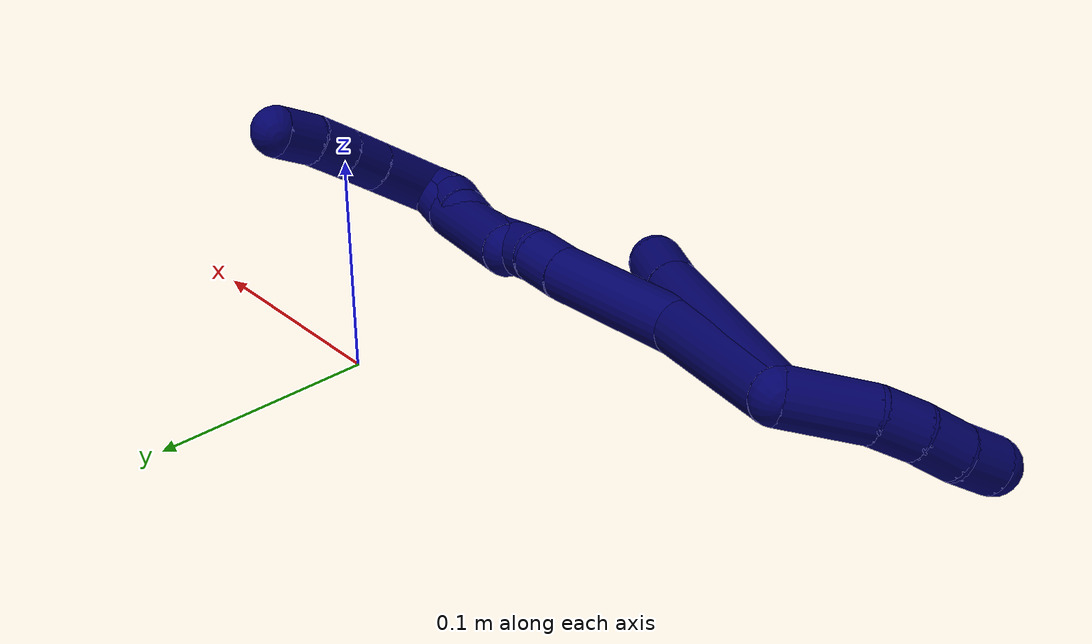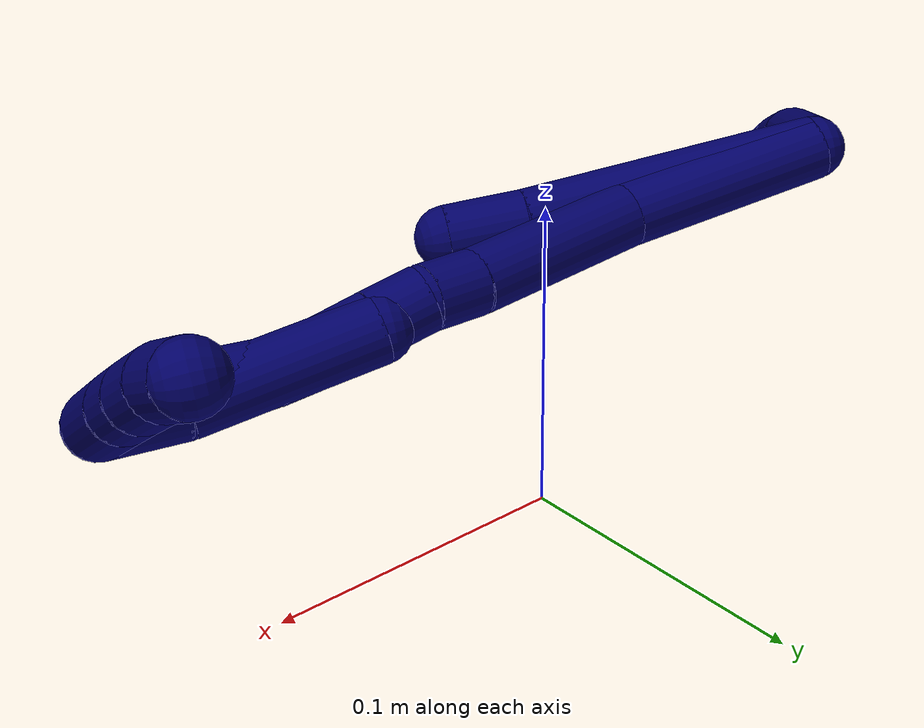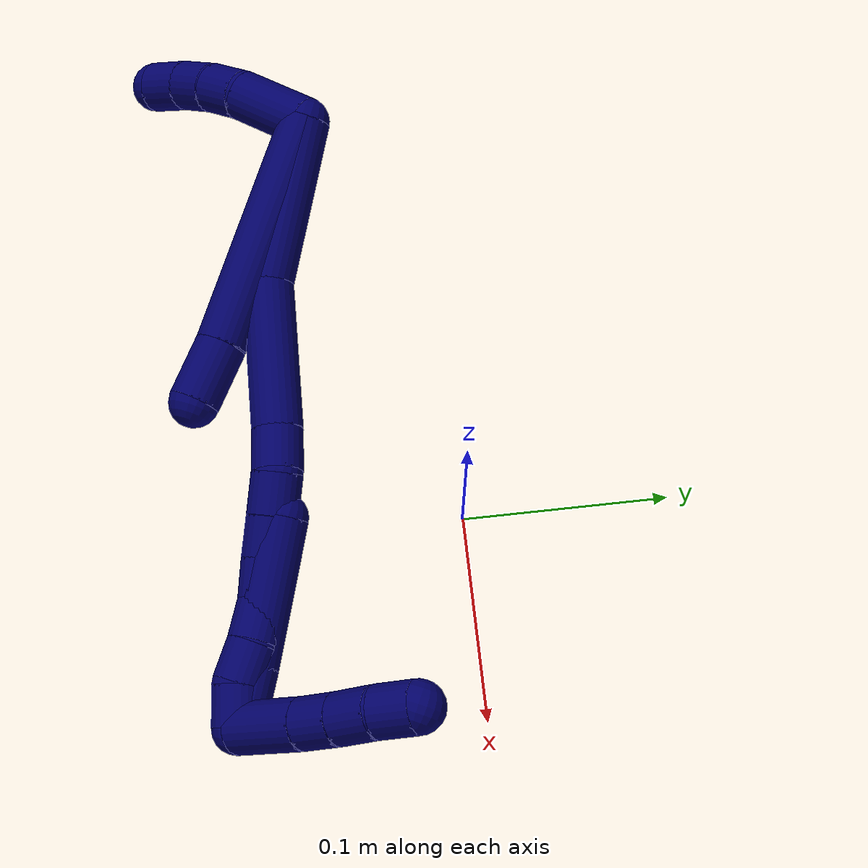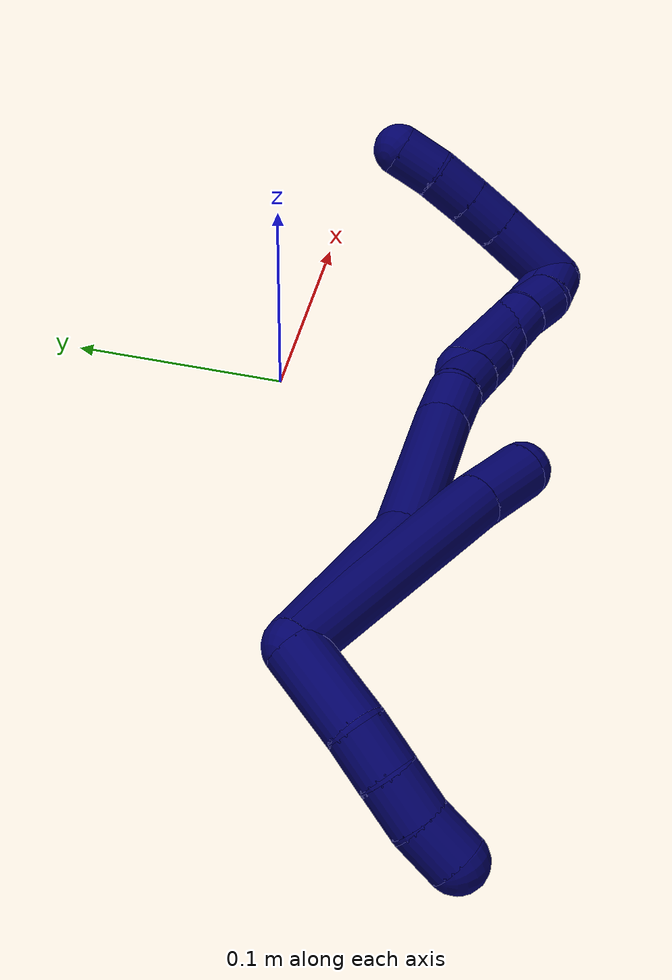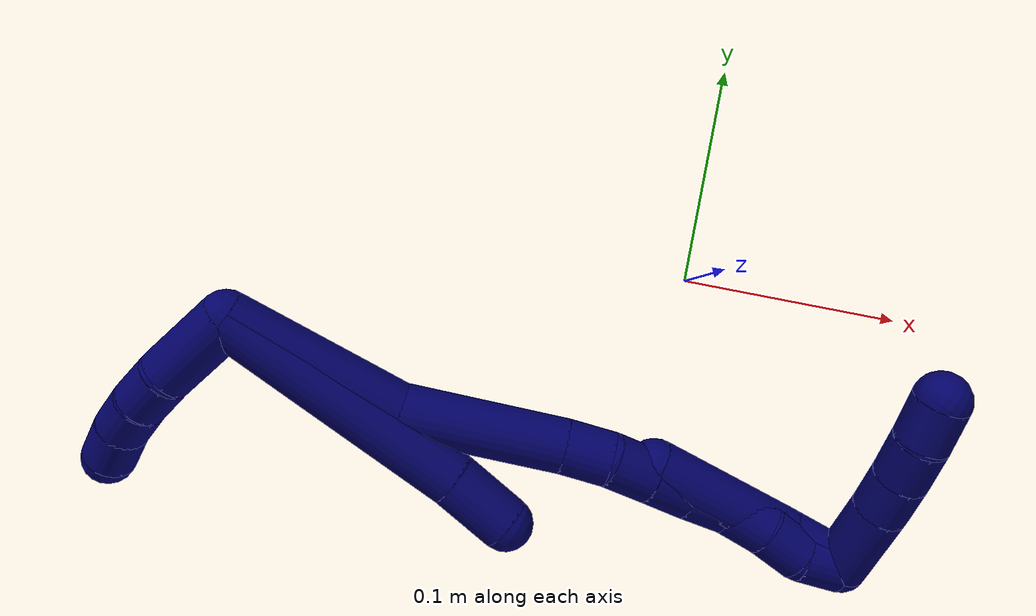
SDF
<sdf version="1.7">
 <world name="default">
  <model name="7">
   <static>0</static>
   <link name="7">
    <collision name="collision-cylinder-e_1_2_8">
     <pose>-0.002067 -0.002022 0.059528 0.033962 -0.034697 -0.000589</pose>
     <geometry><cylinder><radius>0.0125</radius><length>0.119197</length></cylinder></geometry>
     <surface>
      <friction><ode><mu>1.16</mu><mu2>1.16</mu2><slip1>0</slip1><slip2>0</slip2></ode></friction>
      <contact><ode><kp>1e+06</kp><kd>1</kd><max_vel>0</max_vel><min_depth>0.001</min_depth></ode></contact>
     </surface>
    </collision>
    <visual name="visual-cylinder-e_1_2_8">
     <pose>-0.002067 -0.002022 0.059528 0.033962 -0.034697 -0.000589</pose>
     <geometry><cylinder><radius>0.0125</radius><length>0.119197</length></cylinder></geometry>
     <material><ambient>0.003922 0 0.403922 1</ambient></material>
    </visual>
    <collision name="collision-cylinder-e_2_8_6">
     <pose>-0.005748 -0.003967 0.134373 -0.005086 -0.104926 0.000267</pose>
     <geometry><cylinder><radius>0.0125</radius><length>0.030803</length></cylinder></geometry>
     <surface>
      <friction><ode><mu>1.16</mu><mu2>1.16</mu2><slip1>0</slip1><slip2>0</slip2></ode></friction>
      <contact><ode><kp>1e+06</kp><kd>1</kd><max_vel>0</max_vel><min_depth>0.001</min_depth></ode></contact>
     </surface>
    </collision>
    <visual name="visual-cylinder-e_2_8_6">
     <pose>-0.005748 -0.003967 0.134373 -0.005086 -0.104926 0.000267</pose>
     <geometry><cylinder><radius>0.0125</radius><length>0.030803</length></cylinder></geometry>
     <material><ambient>0.003922 0 0.403922 1</ambient></material>
    </visual>
    <collision name="collision-cylinder-e_1_2_9">
     <pose>-0.019256 -1.6e-05 -0.004312 3.13779 -1.35049 -3.13684</pose>
     <geometry><cylinder><radius>0.0125</radius><length>0.039466</length></cylinder></geometry>
     <surface>
      <friction><ode><mu>1.16</mu><mu2>1.16</mu2><slip1>0</slip1><slip2>0</slip2></ode></friction>
      <contact><ode><kp>1e+06</kp><kd>1</kd><max_vel>0</max_vel><min_depth>0.001</min_depth></ode></contact>
     </surface>
    </collision>
    <visual name="visual-cylinder-e_1_2_9">
     <pose>-0.019256 -1.6e-05 -0.004312 3.13779 -1.35049 -3.13684</pose>
     <geometry><cylinder><radius>0.0125</radius><length>0.039466</length></cylinder></geometry>
     <material><ambient>0.003922 0 0.403922 1</ambient></material>
    </visual>
    <collision name="collision-cylinder-e_2_9_10">
     <pose>-0.048379 -0.002055 -0.010134 2.212 -1.32039 -1.99471</pose>
     <geometry><cylinder><radius>0.0125</radius><length>0.020369</length></cylinder></geometry>
     <surface>
      <friction><ode><mu>1.16</mu><mu2>1.16</mu2><slip1>0</slip1><slip2>0</slip2></ode></friction>
      <contact><ode><kp>1e+06</kp><kd>1</kd><max_vel>0</max_vel><min_depth>0.001</min_depth></ode></contact>
     </surface>
    </collision>
    <visual name="visual-cylinder-e_2_9_10">
     <pose>-0.048379 -0.002055 -0.010134 2.212 -1.32039 -1.99471</pose>
     <geometry><cylinder><radius>0.0125</radius><length>0.020369</length></cylinder></geometry>
     <material><ambient>0.003922 0 0.403922 1</ambient></material>
    </visual>
    <collision name="collision-cylinder-e_3_10_11">
     <pose>-0.067792 -0.00717 -0.012351 1.79573 -1.25004 -1.47141</pose>
     <geometry><cylinder><radius>0.0125</radius><length>0.02012</length></cylinder></geometry>
     <surface>
      <friction><ode><mu>1.16</mu><mu2>1.16</mu2><slip1>0</slip1><slip2>0</slip2></ode></friction>
      <contact><ode><kp>1e+06</kp><kd>1</kd><max_vel>0</max_vel><min_depth>0.001</min_depth></ode></contact>
     </surface>
    </collision>
    <visual name="visual-cylinder-e_3_10_11">
     <pose>-0.067792 -0.00717 -0.012351 1.79573 -1.25004 -1.47141</pose>
     <geometry><cylinder><radius>0.0125</radius><length>0.02012</length></cylinder></geometry>
     <material><ambient>0.003922 0 0.403922 1</ambient></material>
    </visual>
    <collision name="collision-cylinder-e_4_11_5">
     <pose>-0.087018 -0.012738 -0.012263 1.26024 -1.30825 -1.01972</pose>
     <geometry><cylinder><radius>0.0125</radius><length>0.020045</length></cylinder></geometry>
     <surface>
      <friction><ode><mu>1.16</mu><mu2>1.16</mu2><slip1>0</slip1><slip2>0</slip2></ode></friction>
      <contact><ode><kp>1e+06</kp><kd>1</kd><max_vel>0</max_vel><min_depth>0.001</min_depth></ode></contact>
     </surface>
    </collision>
    <visual name="visual-cylinder-e_4_11_5">
     <pose>-0.087018 -0.012738 -0.012263 1.26024 -1.30825 -1.01972</pose>
     <geometry><cylinder><radius>0.0125</radius><length>0.020045</length></cylinder></geometry>
     <material><ambient>0.003922 0 0.403922 1</ambient></material>
    </visual>
    <collision name="collision-cylinder-e_1_2_12">
     <pose>0.003159 -0.004285 0.041265 0.103461 0.075994 0.003937</pose>
     <geometry><cylinder><radius>0.0125</radius><length>0.083215</length></cylinder></geometry>
     <surface>
      <friction><ode><mu>1.16</mu><mu2>1.16</mu2><slip1>0</slip1><slip2>0</slip2></ode></friction>
      <contact><ode><kp>1e+06</kp><kd>1</kd><max_vel>0</max_vel><min_depth>0.001</min_depth></ode></contact>
     </surface>
    </collision>
    <visual name="visual-cylinder-e_1_2_12">
     <pose>0.003159 -0.004285 0.041265 0.103461 0.075994 0.003937</pose>
     <geometry><cylinder><radius>0.0125</radius><length>0.083215</length></cylinder></geometry>
     <material><ambient>0.003922 0 0.403922 1</ambient></material>
    </visual>
    <collision name="collision-cylinder-e_2_12_13">
     <pose>0.020034 -0.011983 0.116791 0.099325 0.379113 0.019072</pose>
     <geometry><cylinder><radius>0.0125</radius><length>0.074123</length></cylinder></geometry>
     <surface>
      <friction><ode><mu>1.16</mu><mu2>1.16</mu2><slip1>0</slip1><slip2>0</slip2></ode></friction>
      <contact><ode><kp>1e+06</kp><kd>1</kd><max_vel>0</max_vel><min_depth>0.001</min_depth></ode></contact>
     </surface>
    </collision>
    <visual name="visual-cylinder-e_2_12_13">
     <pose>0.020034 -0.011983 0.116791 0.099325 0.379113 0.019072</pose>
     <geometry><cylinder><radius>0.0125</radius><length>0.074123</length></cylinder></geometry>
     <material><ambient>0.003922 0 0.403922 1</ambient></material>
    </visual>
    <collision name="collision-cylinder-e_3_13_14">
     <pose>0.037318 -0.015554 0.161082 0.01563 0.34167 0.002697</pose>
     <geometry><cylinder><radius>0.0125</radius><length>0.021296</length></cylinder></geometry>
     <surface>
      <friction><ode><mu>1.16</mu><mu2>1.16</mu2><slip1>0</slip1><slip2>0</slip2></ode></friction>
      <contact><ode><kp>1e+06</kp><kd>1</kd><max_vel>0</max_vel><min_depth>0.001</min_depth></ode></contact>
     </surface>
    </collision>
    <visual name="visual-cylinder-e_3_13_14">
     <pose>0.037318 -0.015554 0.161082 0.01563 0.34167 0.002697</pose>
     <geometry><cylinder><radius>0.0125</radius><length>0.021296</length></cylinder></geometry>
     <material><ambient>0.003922 0 0.403922 1</ambient></material>
    </visual>
    <collision name="collision-cylinder-e_4_14_15">
     <pose>0.042378 -0.017828 0.181091 0.209034 0.145307 0.015269</pose>
     <geometry><cylinder><radius>0.0125</radius><length>0.020616</length></cylinder></geometry>
     <surface>
      <friction><ode><mu>1.16</mu><mu2>1.16</mu2><slip1>0</slip1><slip2>0</slip2></ode></friction>
      <contact><ode><kp>1e+06</kp><kd>1</kd><max_vel>0</max_vel><min_depth>0.001</min_depth></ode></contact>
     </surface>
    </collision>
    <visual name="visual-cylinder-e_4_14_15">
     <pose>0.042378 -0.017828 0.181091 0.209034 0.145307 0.015269</pose>
     <geometry><cylinder><radius>0.0125</radius><length>0.020616</length></cylinder></geometry>
     <material><ambient>0.003922 0 0.403922 1</ambient></material>
    </visual>
    <collision name="collision-cylinder-e_5_15_16">
     <pose>0.045149 -0.02228 0.200928 0.232608 0.125488 0.01468</pose>
     <geometry><cylinder><radius>0.0125</radius><length>0.020426</length></cylinder></geometry>
     <surface>
      <friction><ode><mu>1.16</mu><mu2>1.16</mu2><slip1>0</slip1><slip2>0</slip2></ode></friction>
      <contact><ode><kp>1e+06</kp><kd>1</kd><max_vel>0</max_vel><min_depth>0.001</min_depth></ode></contact>
     </surface>
    </collision>
    <visual name="visual-cylinder-e_5_15_16">
     <pose>0.045149 -0.02228 0.200928 0.232608 0.125488 0.01468</pose>
     <geometry><cylinder><radius>0.0125</radius><length>0.020426</length></cylinder></geometry>
     <material><ambient>0.003922 0 0.403922 1</ambient></material>
    </visual>
    <collision name="collision-cylinder-e_6_16_17">
     <pose>0.048643 -0.025671 0.220635 0.106777 0.220081 0.011809</pose>
     <geometry><cylinder><radius>0.0125</radius><length>0.020297</length></cylinder></geometry>
     <surface>
      <friction><ode><mu>1.16</mu><mu2>1.16</mu2><slip1>0</slip1><slip2>0</slip2></ode></friction>
      <contact><ode><kp>1e+06</kp><kd>1</kd><max_vel>0</max_vel><min_depth>0.001</min_depth></ode></contact>
     </surface>
    </collision>
    <visual name="visual-cylinder-e_6_16_17">
     <pose>0.048643 -0.025671 0.220635 0.106777 0.220081 0.011809</pose>
     <geometry><cylinder><radius>0.0125</radius><length>0.020297</length></cylinder></geometry>
     <material><ambient>0.003922 0 0.403922 1</ambient></material>
    </visual>
    <collision name="collision-cylinder-e_7_17_18">
     <pose>0.051906 -0.026225 0.240419 -0.050402 0.104899 -0.002647</pose>
     <geometry><cylinder><radius>0.0125</radius><length>0.020008</length></cylinder></geometry>
     <surface>
      <friction><ode><mu>1.16</mu><mu2>1.16</mu2><slip1>0</slip1><slip2>0</slip2></ode></friction>
      <contact><ode><kp>1e+06</kp><kd>1</kd><max_vel>0</max_vel><min_depth>0.001</min_depth></ode></contact>
     </surface>
    </collision>
    <visual name="visual-cylinder-e_7_17_18">
     <pose>0.051906 -0.026225 0.240419 -0.050402 0.104899 -0.002647</pose>
     <geometry><cylinder><radius>0.0125</radius><length>0.020008</length></cylinder></geometry>
     <material><ambient>0.003922 0 0.403922 1</ambient></material>
    </visual>
    <collision name="collision-cylinder-e_8_18_19">
     <pose>0.052691 -0.025795 0.26036 0.007115 -0.026248 -9.3e-05</pose>
     <geometry><cylinder><radius>0.0125</radius><length>0.020018</length></cylinder></geometry>
     <surface>
      <friction><ode><mu>1.16</mu><mu2>1.16</mu2><slip1>0</slip1><slip2>0</slip2></ode></friction>
      <contact><ode><kp>1e+06</kp><kd>1</kd><max_vel>0</max_vel><min_depth>0.001</min_depth></ode></contact>
     </surface>
    </collision>
    <visual name="visual-cylinder-e_8_18_19">
     <pose>0.052691 -0.025795 0.26036 0.007115 -0.026248 -9.3e-05</pose>
     <geometry><cylinder><radius>0.0125</radius><length>0.020018</length></cylinder></geometry>
     <material><ambient>0.003922 0 0.403922 1</ambient></material>
    </visual>
    <collision name="collision-cylinder-e_9_19_1">
     <pose>0.055291 -0.027302 0.27984 0.150327 0.290293 0.022014</pose>
     <geometry><cylinder><radius>0.0125</radius><length>0.020002</length></cylinder></geometry>
     <surface>
      <friction><ode><mu>1.16</mu><mu2>1.16</mu2><slip1>0</slip1><slip2>0</slip2></ode></friction>
      <contact><ode><kp>1e+06</kp><kd>1</kd><max_vel>0</max_vel><min_depth>0.001</min_depth></ode></contact>
     </surface>
    </collision>
    <visual name="visual-cylinder-e_9_19_1">
     <pose>0.055291 -0.027302 0.27984 0.150327 0.290293 0.022014</pose>
     <geometry><cylinder><radius>0.0125</radius><length>0.020002</length></cylinder></geometry>
     <material><ambient>0.003922 0 0.403922 1</ambient></material>
    </visual>
    <collision name="collision-cylinder-e_1_1_20">
     <pose>0.075667 -0.023057 0.284523 -2.27155 1.16954 -1.91749</pose>
     <geometry><cylinder><radius>0.0125</radius><length>0.03805</length></cylinder></geometry>
     <surface>
      <friction><ode><mu>1.16</mu><mu2>1.16</mu2><slip1>0</slip1><slip2>0</slip2></ode></friction>
      <contact><ode><kp>1e+06</kp><kd>1</kd><max_vel>0</max_vel><min_depth>0.001</min_depth></ode></contact>
     </surface>
    </collision>
    <visual name="visual-cylinder-e_1_1_20">
     <pose>0.075667 -0.023057 0.284523 -2.27155 1.16954 -1.91749</pose>
     <geometry><cylinder><radius>0.0125</radius><length>0.03805</length></cylinder></geometry>
     <material><ambient>0.003922 0 0.403922 1</ambient></material>
    </visual>
    <collision name="collision-cylinder-e_2_20_21">
     <pose>0.102347 -0.014314 0.276718 -2.34803 1.13237 -1.97593</pose>
     <geometry><cylinder><radius>0.0125</radius><length>0.020246</length></cylinder></geometry>
     <surface>
      <friction><ode><mu>1.16</mu><mu2>1.16</mu2><slip1>0</slip1><slip2>0</slip2></ode></friction>
      <contact><ode><kp>1e+06</kp><kd>1</kd><max_vel>0</max_vel><min_depth>0.001</min_depth></ode></contact>
     </surface>
    </collision>
    <visual name="visual-cylinder-e_2_20_21">
     <pose>0.102347 -0.014314 0.276718 -2.34803 1.13237 -1.97593</pose>
     <geometry><cylinder><radius>0.0125</radius><length>0.020246</length></cylinder></geometry>
     <material><ambient>0.003922 0 0.403922 1</ambient></material>
    </visual>
    <collision name="collision-cylinder-e_3_21_22">
     <pose>0.120904 -0.008103 0.270158 -2.41576 1.10323 -2.03576</pose>
     <geometry><cylinder><radius>0.0125</radius><length>0.021041</length></cylinder></geometry>
     <surface>
      <friction><ode><mu>1.16</mu><mu2>1.16</mu2><slip1>0</slip1><slip2>0</slip2></ode></friction>
      <contact><ode><kp>1e+06</kp><kd>1</kd><max_vel>0</max_vel><min_depth>0.001</min_depth></ode></contact>
     </surface>
    </collision>
    <visual name="visual-cylinder-e_3_21_22">
     <pose>0.120904 -0.008103 0.270158 -2.41576 1.10323 -2.03576</pose>
     <geometry><cylinder><radius>0.0125</radius><length>0.021041</length></cylinder></geometry>
     <material><ambient>0.003922 0 0.403922 1</ambient></material>
    </visual>
    <collision name="collision-cylinder-e_4_22_4">
     <pose>0.139893 -0.003277 0.263176 -2.68694 1.1917 -2.48404</pose>
     <geometry><cylinder><radius>0.0125</radius><length>0.020663</length></cylinder></geometry>
     <surface>
      <friction><ode><mu>1.16</mu><mu2>1.16</mu2><slip1>0</slip1><slip2>0</slip2></ode></friction>
      <contact><ode><kp>1e+06</kp><kd>1</kd><max_vel>0</max_vel><min_depth>0.001</min_depth></ode></contact>
     </surface>
    </collision>
    <visual name="visual-cylinder-e_4_22_4">
     <pose>0.139893 -0.003277 0.263176 -2.68694 1.1917 -2.48404</pose>
     <geometry><cylinder><radius>0.0125</radius><length>0.020663</length></cylinder></geometry>
     <material><ambient>0.003922 0 0.403922 1</ambient></material>
    </visual>
    <collision name="collision-cylinder-e_1_1_23">
     <pose>0.056404 -0.029237 0.274859 3.10699 -0.120329 -2.58216</pose>
     <geometry><cylinder><radius>0.0125</radius><length>0.029139</length></cylinder></geometry>
     <surface>
      <friction><ode><mu>1.16</mu><mu2>1.16</mu2><slip1>0</slip1><slip2>0</slip2></ode></friction>
      <contact><ode><kp>1e+06</kp><kd>1</kd><max_vel>0</max_vel><min_depth>0.001</min_depth></ode></contact>
     </surface>
    </collision>
    <visual name="visual-cylinder-e_1_1_23">
     <pose>0.056404 -0.029237 0.274859 3.10699 -0.120329 -2.58216</pose>
     <geometry><cylinder><radius>0.0125</radius><length>0.029139</length></cylinder></geometry>
     <material><ambient>0.003922 0 0.403922 1</ambient></material>
    </visual>
    <collision name="collision-cylinder-e_2_23_3">
     <pose>0.051547 -0.025516 0.225363 -3.02169 -0.087849 1.26409</pose>
     <geometry><cylinder><radius>0.0125</radius><length>0.070861</length></cylinder></geometry>
     <surface>
      <friction><ode><mu>1.16</mu><mu2>1.16</mu2><slip1>0</slip1><slip2>0</slip2></ode></friction>
      <contact><ode><kp>1e+06</kp><kd>1</kd><max_vel>0</max_vel><min_depth>0.001</min_depth></ode></contact>
     </surface>
    </collision>
    <visual name="visual-cylinder-e_2_23_3">
     <pose>0.051547 -0.025516 0.225363 -3.02169 -0.087849 1.26409</pose>
     <geometry><cylinder><radius>0.0125</radius><length>0.070861</length></cylinder></geometry>
     <material><ambient>0.003922 0 0.403922 1</ambient></material>
    </visual>
    <collision name="collision-sphere-3">
     <pose>0.048438 -0.021294 0.190322 0 -0 0</pose>
     <geometry><sphere><radius>0.0125</radius></sphere></geometry>
     <surface>
      <friction><ode><mu>1.16</mu><mu2>1.16</mu2><slip1>0</slip1><slip2>0</slip2></ode></friction>
      <contact><ode><kp>1e+06</kp><kd>1</kd><max_vel>0</max_vel><min_depth>0.001</min_depth></ode></contact>
     </surface>
    </collision>
    <visual name="visual-sphere-3">
     <pose>0.048438 -0.021294 0.190322 0 -0 0</pose>
     <geometry><sphere><radius>0.0125</radius></sphere></geometry>
     <material><ambient>0.003922 0 0.403922 1</ambient></material>
    </visual>
    <collision name="collision-sphere-23">
     <pose>0.054655 -0.029737 0.260403 0 -0 0</pose>
     <geometry><sphere><radius>0.0125</radius></sphere></geometry>
     <surface>
      <friction><ode><mu>1.16</mu><mu2>1.16</mu2><slip1>0</slip1><slip2>0</slip2></ode></friction>
      <contact><ode><kp>1e+06</kp><kd>1</kd><max_vel>0</max_vel><min_depth>0.001</min_depth></ode></contact>
     </surface>
    </collision>
    <visual name="visual-sphere-23">
     <pose>0.054655 -0.029737 0.260403 0 -0 0</pose>
     <geometry><sphere><radius>0.0125</radius></sphere></geometry>
     <material><ambient>0.003922 0 0.403922 1</ambient></material>
    </visual>
    <collision name="collision-sphere-4">
     <pose>0.149491 -0.001598 0.259741 0 -0 0</pose>
     <geometry><sphere><radius>0.0125</radius></sphere></geometry>
     <surface>
      <friction><ode><mu>1.16</mu><mu2>1.16</mu2><slip1>0</slip1><slip2>0</slip2></ode></friction>
      <contact><ode><kp>1e+06</kp><kd>1</kd><max_vel>0</max_vel><min_depth>0.001</min_depth></ode></contact>
     </surface>
    </collision>
    <visual name="visual-sphere-4">
     <pose>0.149491 -0.001598 0.259741 0 -0 0</pose>
     <geometry><sphere><radius>0.0125</radius></sphere></geometry>
     <material><ambient>0.003922 0 0.403922 1</ambient></material>
    </visual>
    <collision name="collision-sphere-22">
     <pose>0.130295 -0.004956 0.266611 0 -0 0</pose>
     <geometry><sphere><radius>0.0125</radius></sphere></geometry>
     <surface>
      <friction><ode><mu>1.16</mu><mu2>1.16</mu2><slip1>0</slip1><slip2>0</slip2></ode></friction>
      <contact><ode><kp>1e+06</kp><kd>1</kd><max_vel>0</max_vel><min_depth>0.001</min_depth></ode></contact>
     </surface>
    </collision>
    <visual name="visual-sphere-22">
     <pose>0.130295 -0.004956 0.266611 0 -0 0</pose>
     <geometry><sphere><radius>0.0125</radius></sphere></geometry>
     <material><ambient>0.003922 0 0.403922 1</ambient></material>
    </visual>
    <collision name="collision-sphere-21">
     <pose>0.111512 -0.01125 0.273704 0 -0 0</pose>
     <geometry><sphere><radius>0.0125</radius></sphere></geometry>
     <surface>
      <friction><ode><mu>1.16</mu><mu2>1.16</mu2><slip1>0</slip1><slip2>0</slip2></ode></friction>
      <contact><ode><kp>1e+06</kp><kd>1</kd><max_vel>0</max_vel><min_depth>0.001</min_depth></ode></contact>
     </surface>
    </collision>
    <visual name="visual-sphere-21">
     <pose>0.111512 -0.01125 0.273704 0 -0 0</pose>
     <geometry><sphere><radius>0.0125</radius></sphere></geometry>
     <material><ambient>0.003922 0 0.403922 1</ambient></material>
    </visual>
    <collision name="collision-sphere-20">
     <pose>0.093181 -0.017377 0.279732 0 -0 0</pose>
     <geometry><sphere><radius>0.0125</radius></sphere></geometry>
     <surface>
      <friction><ode><mu>1.16</mu><mu2>1.16</mu2><slip1>0</slip1><slip2>0</slip2></ode></friction>
      <contact><ode><kp>1e+06</kp><kd>1</kd><max_vel>0</max_vel><min_depth>0.001</min_depth></ode></contact>
     </surface>
    </collision>
    <visual name="visual-sphere-20">
     <pose>0.093181 -0.017377 0.279732 0 -0 0</pose>
     <geometry><sphere><radius>0.0125</radius></sphere></geometry>
     <material><ambient>0.003922 0 0.403922 1</ambient></material>
    </visual>
    <collision name="collision-sphere-11">
     <pose>-0.077339 -0.010261 -0.013058 0 -0 0</pose>
     <geometry><sphere><radius>0.0125</radius></sphere></geometry>
     <surface>
      <friction><ode><mu>1.16</mu><mu2>1.16</mu2><slip1>0</slip1><slip2>0</slip2></ode></friction>
      <contact><ode><kp>1e+06</kp><kd>1</kd><max_vel>0</max_vel><min_depth>0.001</min_depth></ode></contact>
     </surface>
    </collision>
    <visual name="visual-sphere-11">
     <pose>-0.077339 -0.010261 -0.013058 0 -0 0</pose>
     <geometry><sphere><radius>0.0125</radius></sphere></geometry>
     <material><ambient>0.003922 0 0.403922 1</ambient></material>
    </visual>
    <collision name="collision-sphere-10">
     <pose>-0.058246 -0.004078 -0.011643 0 -0 0</pose>
     <geometry><sphere><radius>0.0125</radius></sphere></geometry>
     <surface>
      <friction><ode><mu>1.16</mu><mu2>1.16</mu2><slip1>0</slip1><slip2>0</slip2></ode></friction>
      <contact><ode><kp>1e+06</kp><kd>1</kd><max_vel>0</max_vel><min_depth>0.001</min_depth></ode></contact>
     </surface>
    </collision>
    <visual name="visual-sphere-10">
     <pose>-0.058246 -0.004078 -0.011643 0 -0 0</pose>
     <geometry><sphere><radius>0.0125</radius></sphere></geometry>
     <material><ambient>0.003922 0 0.403922 1</ambient></material>
    </visual>
    <collision name="collision-sphere-6">
     <pose>-0.007361 -0.003889 0.14969 0 -0 0</pose>
     <geometry><sphere><radius>0.0125</radius></sphere></geometry>
     <surface>
      <friction><ode><mu>1.16</mu><mu2>1.16</mu2><slip1>0</slip1><slip2>0</slip2></ode></friction>
      <contact><ode><kp>1e+06</kp><kd>1</kd><max_vel>0</max_vel><min_depth>0.001</min_depth></ode></contact>
     </surface>
    </collision>
    <visual name="visual-sphere-6">
     <pose>-0.007361 -0.003889 0.14969 0 -0 0</pose>
     <geometry><sphere><radius>0.0125</radius></sphere></geometry>
     <material><ambient>0.003922 0 0.403922 1</ambient></material>
    </visual>
    <collision name="collision-sphere-9">
     <pose>-0.038512 -3.3e-05 -0.008624 0 -0 0</pose>
     <geometry><sphere><radius>0.0125</radius></sphere></geometry>
     <surface>
      <friction><ode><mu>1.16</mu><mu2>1.16</mu2><slip1>0</slip1><slip2>0</slip2></ode></friction>
      <contact><ode><kp>1e+06</kp><kd>1</kd><max_vel>0</max_vel><min_depth>0.001</min_depth></ode></contact>
     </surface>
    </collision>
    <visual name="visual-sphere-9">
     <pose>-0.038512 -3.3e-05 -0.008624 0 -0 0</pose>
     <geometry><sphere><radius>0.0125</radius></sphere></geometry>
     <material><ambient>0.003922 0 0.403922 1</ambient></material>
    </visual>
    <collision name="collision-sphere-2">
     <geometry><sphere><radius>0.0125</radius></sphere></geometry>
     <surface>
      <friction><ode><mu>1.16</mu><mu2>1.16</mu2><slip1>0</slip1><slip2>0</slip2></ode></friction>
      <contact><ode><kp>1e+06</kp><kd>1</kd><max_vel>0</max_vel><min_depth>0.001</min_depth></ode></contact>
     </surface>
    </collision>
    <visual name="visual-sphere-2">
     <geometry><sphere><radius>0.0125</radius></sphere></geometry>
     <material><ambient>0.003922 0 0.403922 1</ambient></material>
    </visual>
    <collision name="collision-sphere-19">
     <pose>0.052428 -0.025866 0.270366 0 -0 0</pose>
     <geometry><sphere><radius>0.0125</radius></sphere></geometry>
     <surface>
      <friction><ode><mu>1.16</mu><mu2>1.16</mu2><slip1>0</slip1><slip2>0</slip2></ode></friction>
      <contact><ode><kp>1e+06</kp><kd>1</kd><max_vel>0</max_vel><min_depth>0.001</min_depth></ode></contact>
     </surface>
    </collision>
    <visual name="visual-sphere-19">
     <pose>0.052428 -0.025866 0.270366 0 -0 0</pose>
     <geometry><sphere><radius>0.0125</radius></sphere></geometry>
     <material><ambient>0.003922 0 0.403922 1</ambient></material>
    </visual>
    <collision name="collision-sphere-8">
     <pose>-0.004135 -0.004045 0.119057 0 -0 0</pose>
     <geometry><sphere><radius>0.0125</radius></sphere></geometry>
     <surface>
      <friction><ode><mu>1.16</mu><mu2>1.16</mu2><slip1>0</slip1><slip2>0</slip2></ode></friction>
      <contact><ode><kp>1e+06</kp><kd>1</kd><max_vel>0</max_vel><min_depth>0.001</min_depth></ode></contact>
     </surface>
    </collision>
    <visual name="visual-sphere-8">
     <pose>-0.004135 -0.004045 0.119057 0 -0 0</pose>
     <geometry><sphere><radius>0.0125</radius></sphere></geometry>
     <material><ambient>0.003922 0 0.403922 1</ambient></material>
    </visual>
    <collision name="collision-sphere-5">
     <pose>-0.096698 -0.015215 -0.011468 0 -0 0</pose>
     <geometry><sphere><radius>0.0125</radius></sphere></geometry>
     <surface>
      <friction><ode><mu>1.16</mu><mu2>1.16</mu2><slip1>0</slip1><slip2>0</slip2></ode></friction>
      <contact><ode><kp>1e+06</kp><kd>1</kd><max_vel>0</max_vel><min_depth>0.001</min_depth></ode></contact>
     </surface>
    </collision>
    <visual name="visual-sphere-5">
     <pose>-0.096698 -0.015215 -0.011468 0 -0 0</pose>
     <geometry><sphere><radius>0.0125</radius></sphere></geometry>
     <material><ambient>0.003922 0 0.403922 1</ambient></material>
    </visual>
    <collision name="collision-sphere-12">
     <pose>0.006318 -0.008569 0.082531 0 -0 0</pose>
     <geometry><sphere><radius>0.0125</radius></sphere></geometry>
     <surface>
      <friction><ode><mu>1.16</mu><mu2>1.16</mu2><slip1>0</slip1><slip2>0</slip2></ode></friction>
      <contact><ode><kp>1e+06</kp><kd>1</kd><max_vel>0</max_vel><min_depth>0.001</min_depth></ode></contact>
     </surface>
    </collision>
    <visual name="visual-sphere-12">
     <pose>0.006318 -0.008569 0.082531 0 -0 0</pose>
     <geometry><sphere><radius>0.0125</radius></sphere></geometry>
     <material><ambient>0.003922 0 0.403922 1</ambient></material>
    </visual>
    <collision name="collision-sphere-13">
     <pose>0.03375 -0.015398 0.151051 0 -0 0</pose>
     <geometry><sphere><radius>0.0125</radius></sphere></geometry>
     <surface>
      <friction><ode><mu>1.16</mu><mu2>1.16</mu2><slip1>0</slip1><slip2>0</slip2></ode></friction>
      <contact><ode><kp>1e+06</kp><kd>1</kd><max_vel>0</max_vel><min_depth>0.001</min_depth></ode></contact>
     </surface>
    </collision>
    <visual name="visual-sphere-13">
     <pose>0.03375 -0.015398 0.151051 0 -0 0</pose>
     <geometry><sphere><radius>0.0125</radius></sphere></geometry>
     <material><ambient>0.003922 0 0.403922 1</ambient></material>
    </visual>
    <collision name="collision-sphere-14">
     <pose>0.040886 -0.015711 0.171114 0 -0 0</pose>
     <geometry><sphere><radius>0.0125</radius></sphere></geometry>
     <surface>
      <friction><ode><mu>1.16</mu><mu2>1.16</mu2><slip1>0</slip1><slip2>0</slip2></ode></friction>
      <contact><ode><kp>1e+06</kp><kd>1</kd><max_vel>0</max_vel><min_depth>0.001</min_depth></ode></contact>
     </surface>
    </collision>
    <visual name="visual-sphere-14">
     <pose>0.040886 -0.015711 0.171114 0 -0 0</pose>
     <geometry><sphere><radius>0.0125</radius></sphere></geometry>
     <material><ambient>0.003922 0 0.403922 1</ambient></material>
    </visual>
    <collision name="collision-sphere-15">
     <pose>0.043871 -0.019944 0.191068 0 -0 0</pose>
     <geometry><sphere><radius>0.0125</radius></sphere></geometry>
     <surface>
      <friction><ode><mu>1.16</mu><mu2>1.16</mu2><slip1>0</slip1><slip2>0</slip2></ode></friction>
      <contact><ode><kp>1e+06</kp><kd>1</kd><max_vel>0</max_vel><min_depth>0.001</min_depth></ode></contact>
     </surface>
    </collision>
    <visual name="visual-sphere-15">
     <pose>0.043871 -0.019944 0.191068 0 -0 0</pose>
     <geometry><sphere><radius>0.0125</radius></sphere></geometry>
     <material><ambient>0.003922 0 0.403922 1</ambient></material>
    </visual>
    <collision name="collision-sphere-16">
     <pose>0.046427 -0.024616 0.210788 0 -0 0</pose>
     <geometry><sphere><radius>0.0125</radius></sphere></geometry>
     <surface>
      <friction><ode><mu>1.16</mu><mu2>1.16</mu2><slip1>0</slip1><slip2>0</slip2></ode></friction>
      <contact><ode><kp>1e+06</kp><kd>1</kd><max_vel>0</max_vel><min_depth>0.001</min_depth></ode></contact>
     </surface>
    </collision>
    <visual name="visual-sphere-16">
     <pose>0.046427 -0.024616 0.210788 0 -0 0</pose>
     <geometry><sphere><radius>0.0125</radius></sphere></geometry>
     <material><ambient>0.003922 0 0.403922 1</ambient></material>
    </visual>
    <collision name="collision-sphere-17">
     <pose>0.050858 -0.026727 0.230482 0 -0 0</pose>
     <geometry><sphere><radius>0.0125</radius></sphere></geometry>
     <surface>
      <friction><ode><mu>1.16</mu><mu2>1.16</mu2><slip1>0</slip1><slip2>0</slip2></ode></friction>
      <contact><ode><kp>1e+06</kp><kd>1</kd><max_vel>0</max_vel><min_depth>0.001</min_depth></ode></contact>
     </surface>
    </collision>
    <visual name="visual-sphere-17">
     <pose>0.050858 -0.026727 0.230482 0 -0 0</pose>
     <geometry><sphere><radius>0.0125</radius></sphere></geometry>
     <material><ambient>0.003922 0 0.403922 1</ambient></material>
    </visual>
    <collision name="collision-sphere-18">
     <pose>0.052953 -0.025724 0.250355 0 -0 0</pose>
     <geometry><sphere><radius>0.0125</radius></sphere></geometry>
     <surface>
      <friction><ode><mu>1.16</mu><mu2>1.16</mu2><slip1>0</slip1><slip2>0</slip2></ode></friction>
      <contact><ode><kp>1e+06</kp><kd>1</kd><max_vel>0</max_vel><min_depth>0.001</min_depth></ode></contact>
     </surface>
    </collision>
    <visual name="visual-sphere-18">
     <pose>0.052953 -0.025724 0.250355 0 -0 0</pose>
     <geometry><sphere><radius>0.0125</radius></sphere></geometry>
     <material><ambient>0.003922 0 0.403922 1</ambient></material>
    </visual>
    <collision name="collision-sphere-1">
     <pose>0.058153 -0.028737 0.289314 0 -0 0</pose>
     <geometry><sphere><radius>0.0125</radius></sphere></geometry>
     <surface>
      <friction><ode><mu>1.16</mu><mu2>1.16</mu2><slip1>0</slip1><slip2>0</slip2></ode></friction>
      <contact><ode><kp>1e+06</kp><kd>1</kd><max_vel>0</max_vel><min_depth>0.001</min_depth></ode></contact>
     </surface>
    </collision>
    <visual name="visual-sphere-1">
     <pose>0.058153 -0.028737 0.289314 0 -0 0</pose>
     <geometry><sphere><radius>0.0125</radius></sphere></geometry>
     <material><ambient>0.003922 0 0.403922 1</ambient></material>
    </visual>
    <inertial>
     <pose>0.02524 -0.012503 0.140466 0 -0 0</pose>
     <mass>0.75</mass>
     <inertia>
      <ixx>0.000277</ixx>
      <ixy>0</ixy>
      <ixz>0</ixz>
      <iyy>0.000285</iyy>
      <iyz>0</iyz>
      <izz>2.3e-05</izz>
     </inertia>
    </inertial>
   </link>
   <pose>-0.19491 -0.056715 0.054233 1.68471 -0.289064 1.11672</pose>
  </model>
 </world>
</sdf>
